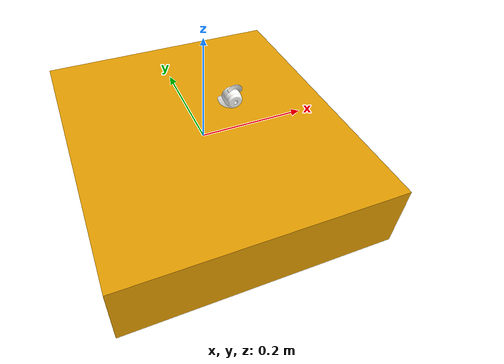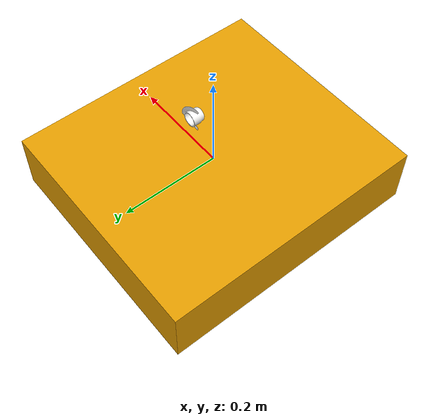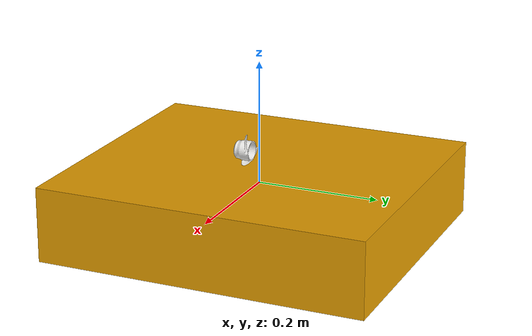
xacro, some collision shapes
<?xml version="1.0"?>
<robot name="ray" xmlns:xacro="http://www.ros.org/wiki/xacro" >

  <xacro:arg name="namespace" default="ray"/>
  <!-- thruster joints are fixed if not for gazebo use -->
  <xacro:arg name="simulation" default="true"/>

  <xacro:arg name="density" default="1000"/>

  <xacro:property name="ns" value="$(arg namespace)"/>
  <xacro:property name="density" value="$(arg density)"/>

  <!-- Main body -->
  <xacro:property name="x_size" value="0.39"/>
  <xacro:property name="y_size" value="0.44"/>
  <xacro:property name="z_size" value="0.1"/>

  <xacro:property name="mass" value="30.3"/>

  <!-- other props -->
  <xacro:property name="prop_mass" value="0.02"/>

  <!-- to set correct buoyancy volume with 1 % positive factor -->
  <xacro:property name="buoyant_correction" value="${1.01*pow((mass + 6*prop_mass)/(density*x_size*y_size*z_size), 1./3)}"/>
  <!-- Center of buoyancy -->
  <xacro:property name="z_cob" value="${-buoyant_correction*z_size/4}"/>
  <!-- Center of gravity -->
  <xacro:property name="z_cog" value="${-buoyant_correction*z_size}"/>

  <xacro:property name="visual_mesh_file" value="package://ray_description/meshes/ray.dae"/>
  <xacro:property name="collision_mesh_file" value="package://ray_description/meshes/ray.stl"/>

  <!-- Vehicle base link -->
    <link name="${ns}/base_link">
    <inertial>
        <mass value="${mass}"/>
        <origin xyz="0 0 ${z_cog}"/>

    <!-- BlueROV2 values from "Model Predictive Control for the BlueROV2",
        Emil Már Einarsson, Andris Lipenitis, Master thesis, 2020
        for now make Ignition crash?-->
        <inertia ixx="5.2539" ixy="0.0144" ixz="0.3341" iyy="7.9420" iyz="0.026" izz="6.9123"/>

            <!-- Perfect rectangle -->
    </inertial>
    <visual>
        <geometry>
        <mesh filename="${visual_mesh_file}"/>
        </geometry>
    </visual>

    <collision>
        <origin xyz="0 0 ${z_cob}"/>
        <!-- Box adjusted for buoyancy -->
        <geometry>
            <box size="${x_size*buoyant_correction} ${y_size*buoyant_correction} ${z_size*buoyant_correction}"/>
        </geometry>
    </collision>

    </link>

<xacro:include filename="hydrodynamics.xacro"/>
<xacro:include filename="thrusters.xacro"/>
<xacro:include filename="sensors.xacro"/>

<!-- other Gazebo plugins -->
<xacro:if value="$(arg simulation)">
    <gazebo>
        <plugin filename="ignition-gazebo-joint-state-publisher-system" name="ignition::gazebo::systems::JointStatePublisher"/>

        <plugin
            filename="ignition-gazebo-odometry-publisher-system"
            name="ignition::gazebo::systems::OdometryPublisher">
            <odom_frame>world</odom_frame>
            <dimensions>3</dimensions>
            <robot_base_frame>${ns}/base_link</robot_base_frame>
            <odom_publish_frequency>20</odom_publish_frequency>
        </plugin>

        <plugin
            filename="ignition-gazebo-pose-publisher-system"
            name="ignition::gazebo::systems::PosePublisher">
            <publish_link_pose>false</publish_link_pose>
            <publish_collision_pose>false</publish_collision_pose>
            <publish_visual_pose>false</publish_visual_pose>
            <publish_nested_model_pose>true</publish_nested_model_pose>
        </plugin>
    </gazebo>
</xacro:if>

</robot>

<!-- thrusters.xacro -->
<robot xmlns:xacro="http://www.ros.org/wiki/xacro">

  <xacro:property name="prop_mesh_cw" value="package://ray_description/meshes/ray_propcw.dae"/>
<xacro:property name="prop_mesh_ccw" value="package://ray_description/meshes/ray_propccw.dae"/>
  <xacro:property name="prop_r" value="0.04"/>
  <xacro:property name="prop_l" value="0.026"/>

  <!--  Thruster macro: joint + link + plugin -->
  <xacro:macro name="thruster" params="thruster_id *origin">

    <link name="${ns}/thruster${thruster_id}">

      <visual>
        <geometry>
          <xacro:if value="${thruster_id in [1,2,5]}">
            <mesh filename="${prop_mesh_cw}"/>
          </xacro:if>
            <xacro:unless value="${thruster_id in [1,2,5]}">
            <mesh filename="${prop_mesh_ccw}"/>
          </xacro:unless>
        </geometry>
      </visual>

     <inertial>
     <!-- thruster axis is X -->
      <origin xyz="${prop_l/2} 0 0" rpy="0 0 0" />
      <mass value="${prop_mass}" />
      <inertia  izz="${prop_mass*prop_r*prop_r / 4  + prop_mass*prop_l*prop_l / 12}" ixy="0.0"  ixz="0.0"
                iyy="${prop_mass*prop_r*prop_r / 4  + prop_mass*prop_l*prop_l / 12}" iyz="0.0"
                ixx="${prop_mass*prop_r*prop_r / 2}" />
    </inertial>
    </link>

    <!-- Joint between thruster link and vehicle base link -->
    <joint name="thruster${thruster_id}" type="continuous">
      <xacro:insert_block name="origin" />
      <xacro:if value="${thruster_id in [1,2,5]}">
        <axis xyz="1 0 0" />
      </xacro:if>
      <xacro:unless value="${thruster_id in [1,2,5]}">
        <axis xyz="-1 0 0" />
      </xacro:unless>
      <parent link="${ns}/base_link" />
      <child link="${ns}/thruster${thruster_id}" />
      <limits effort="-1" velocity="-1"/>
    </joint>

    <!-- ignition topic is /model/{ns}/joint/{joint_name}/cmd_pos -->
    <gazebo>
        <plugin
            filename="ignition-gazebo-thruster-system"
            name="ignition::gazebo::systems::Thruster">
            <namespace>${ns}</namespace>
            <joint_name>thruster${thruster_id}</joint_name>
            <topic>thruster${thruster_id}/cmd</topic>
            <thrust_coefficient>0.011</thrust_coefficient>
            <fluid_density>${density}</fluid_density>
            <propeller_diameter>${2*prop_r}</propeller_diameter>
            <velocity_control>true</velocity_control>
            <use_angvel_cmd>false</use_angvel_cmd>
            <max_thrust_cmd>40</max_thrust_cmd>
            <min_thrust_cmd>-40</min_thrust_cmd>
        </plugin>
      </gazebo>
</xacro:macro>

  <!-- all 6 thrusters -->

  <xacro:thruster thruster_id="1">
    <origin xyz="0.0549 0.0 0.0715" rpy="0 0 -1.5707963268"/>
  </xacro:thruster>

  <xacro:thruster thruster_id="2">
    <origin xyz="0.1265 0.0747 0.0" rpy="0 0 0"/>
  </xacro:thruster>

  <xacro:thruster thruster_id="3">
    <origin xyz="0.1265 -0.0747 0.0" rpy="0 0 0"/>
  </xacro:thruster>

  <xacro:thruster thruster_id="4">
    <origin xyz="0.1815 0.0 0.0" rpy="0 -1.5707963268 0"/>
  </xacro:thruster>

  <xacro:thruster thruster_id="5">
    <origin xyz="-0.1000 0.0684 0.0" rpy="0 -1.5707963268 0"/>
  </xacro:thruster>

  <xacro:thruster thruster_id="6">
    <origin xyz="-0.1000 -0.0684 0.0" rpy="0 -1.5707963268 0"/>
  </xacro:thruster>

</robot>

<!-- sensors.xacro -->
<robot xmlns:xacro="http://www.ros.org/wiki/xacro">

<xacro:property name="x_camera" value="0.02"/>
<xacro:property name="PI" value="3.1415927"/>

<xacro:macro name="imu" params="name *origin">
    <link name="${ns}/${name}"/>
    <gazebo reference="${ns}/${name}">
    <sensor name="${name}_imu" type="imu">
            <always_on>1</always_on>
            <update_rate>10</update_rate>
            <visualize>true</visualize>
            <topic>${ns}/${name}</topic>
            <gz_frame_id>${ns}/${name}</gz_frame_id>
      <imu>
        <angular_velocity>
          <x>
            <noise type="gaussian">
              <mean>0</mean>
              <stddev>0.009</stddev>
              <bias_mean>0.00075</bias_mean>
              <bias_stddev>0.005</bias_stddev>
              <dynamic_bias_stddev>0.00002</dynamic_bias_stddev>
              <dynamic_bias_correlation_time>400.0</dynamic_bias_correlation_time>
              <precision>0.00025</precision>
            </noise>
          </x>
          <y>
            <noise type="gaussian">
              <mean>0</mean>
              <stddev>0.009</stddev>
              <bias_mean>0.00075</bias_mean>
              <bias_stddev>0.005</bias_stddev>
              <dynamic_bias_stddev>0.00002</dynamic_bias_stddev>
              <dynamic_bias_correlation_time>400.0</dynamic_bias_correlation_time>
              <precision>0.00025</precision>
            </noise>
          </y>
          <z>
            <noise type="gaussian">
              <mean>0</mean>
              <stddev>0.009</stddev>
              <bias_mean>0.00075</bias_mean>
              <bias_stddev>0.005</bias_stddev>
              <dynamic_bias_stddev>0.00002</dynamic_bias_stddev>
              <dynamic_bias_correlation_time>400.0</dynamic_bias_correlation_time>
              <precision>0.00025</precision>
            </noise>
          </z>
        </angular_velocity>
        <linear_acceleration>
          <x>
            <noise type="gaussian">
              <mean>0</mean>
              <stddev>0.021</stddev>
              <bias_mean>0.05</bias_mean>
              <bias_stddev>0.0075</bias_stddev>
              <dynamic_bias_stddev>0.000375</dynamic_bias_stddev>
              <dynamic_bias_correlation_time>175.0</dynamic_bias_correlation_time>
              <precision>0.005</precision>
            </noise>
          </x>
          <y>
            <noise type="gaussian">
              <mean>0</mean>
              <stddev>0.021</stddev>
              <bias_mean>0.05</bias_mean>
              <bias_stddev>0.0075</bias_stddev>
              <dynamic_bias_stddev>0.000375</dynamic_bias_stddev>
              <dynamic_bias_correlation_time>175.0</dynamic_bias_correlation_time>
              <precision>0.005</precision>
            </noise>
          </y>
          <z>
            <noise type="gaussian">
              <mean>0</mean>
              <stddev>0.021</stddev>
              <bias_mean>0.05</bias_mean>
              <bias_stddev>0.0075</bias_stddev>
              <dynamic_bias_stddev>0.000375</dynamic_bias_stddev>
              <dynamic_bias_correlation_time>175.0</dynamic_bias_correlation_time>
              <precision>0.005</precision>
            </noise>
          </z>
        </linear_acceleration>
        <orientation_reference_frame>
          <localization>ENU</localization>
        </orientation_reference_frame>
      </imu>
        </sensor>
      </gazebo>
     <joint name="${name}" type="fixed">
        <xacro:insert_block name="origin"/>
        <parent link="${ns}/base_link"/>
        <child link="${ns}/${name}"/>
    </joint>
</xacro:macro>

<xacro:imu name="mpu">
    <origin xyz="0.1 0 0" rpy="0 0 ${-PI/2}"/>
</xacro:imu>

<xacro:imu name="lsm">
    <origin xyz="0.1 0 0" rpy="0 0 ${-PI/2}"/>
</xacro:imu>

  <!-- Pressure Sensor  -->

  <link name="${ns}/camera">
    <inertial>
    <mass value="0.015"/>
    <inertia
    ixx="0.001"
    ixy="0.0"
    ixz="0.0"
    iyy="0.001"
    iyz="0"
    izz="0.001"/>
    </inertial>
 </link>

<joint name="tilt" type="revolute">
    <parent link="${ns}/base_link"/>
    <child link="${ns}/camera"/>
    <origin xyz="${x_camera + .15} 0 0" rpy="0 0 0"/>
    <axis xyz="0 1 0" />
    <limit effort="100" velocity="5.0" lower="${-PI/3}" upper="${PI/3}"/>
    <dynamics damping="0.8"/>
</joint>

<link name="${ns}/camera_optical"/>

<joint name="camera_optical" type="fixed">
    <parent link="${ns}/camera"/>
    <child link="${ns}/camera_optical"/>
    <origin rpy="${-PI/2} 0 ${-PI/2}"/>
</joint>

<gazebo>
    <plugin filename="ignition-gazebo-joint-position-controller-system" name="ignition::gazebo::systems::JointPositionController">
        <joint_name>tilt</joint_name>
        <p_gain>10.</p_gain>
        <i_gain>0.2</i_gain>
        <d_gain>0.1</d_gain>
        <i_max>10</i_max>
        <i_min>-10</i_min>
    </plugin>
</gazebo>

 <gazebo reference="${ns}/camera">
  <sensor name="camera" type="camera">
    <camera>
    <optical_frame_id>${ns}/camera_optical</optical_frame_id>
    <horizontal_fov>1.047</horizontal_fov>
    <image>
        <width>640</width>
        <height>400</height>
    </image>
    <clip>
        <near>0.1</near>
        <far>100</far>
    </clip>
    </camera>
    <always_on>1</always_on>
    <update_rate>20</update_rate>
    <visualize>true</visualize>
    <topic>${ns}/image</topic>
    <enable_metrics>false</enable_metrics>
  </sensor>
</gazebo>

</robot>
